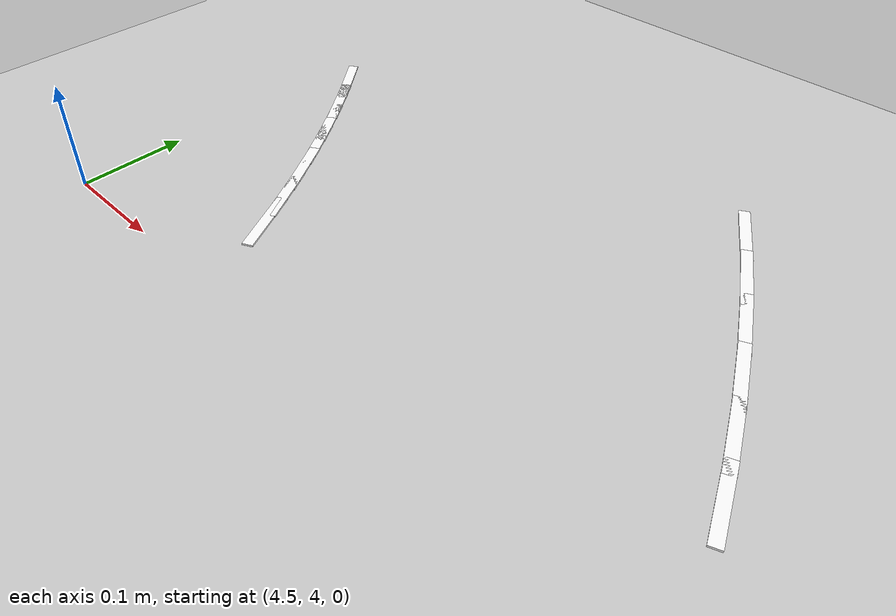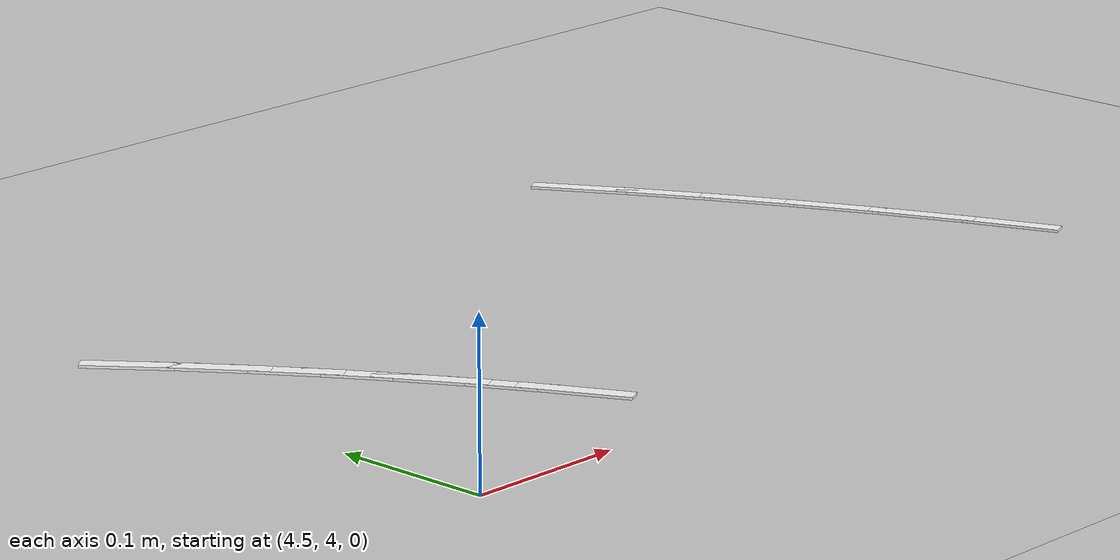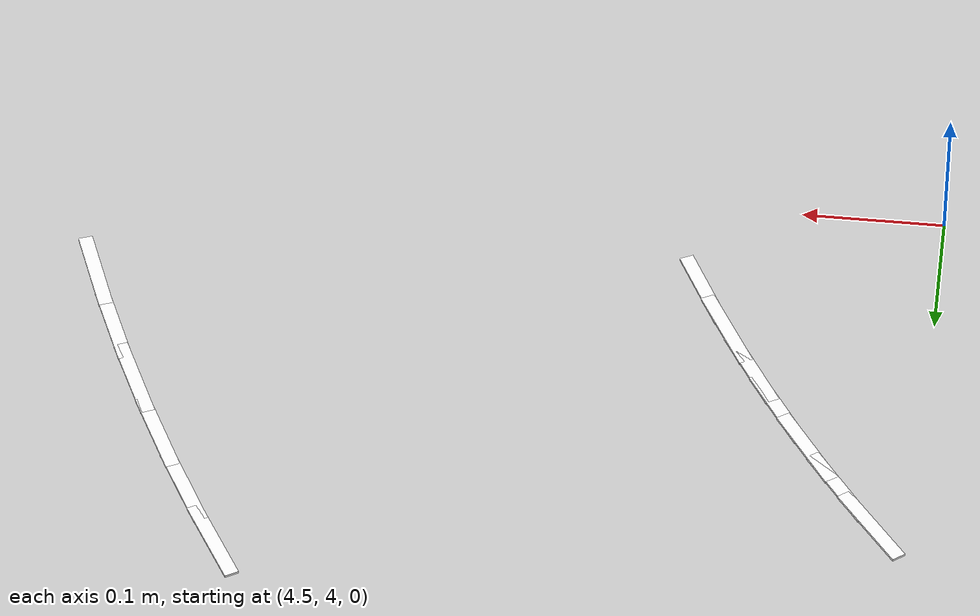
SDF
<sdf version="1.7">
 <world name="default">
  <model name="ground_plane">
   <static>1</static>
   <link name="link">
    <collision name="collision">
     <geometry><plane><normal>0 0 1</normal><size>100 100</size></plane></geometry>
     <surface>
      <contact><collide_bitmask>65535</collide_bitmask></contact>
      <friction><ode><mu>100</mu><mu2>50</mu2></ode></friction>
     </surface>
    </collision>
    <visual name="visual">
     <cast_shadows>0</cast_shadows>
     <geometry><plane><normal>0 0 1</normal><size>100 100</size></plane></geometry>
     <material>
      <script><uri>file://media/materials/scripts/gazebo.material</uri><name>Gazebo/Grey</name></script>
     </material>
    </visual>
   </link>
  </model>
  <model name="lane_line_right_161">
   <static>1</static>
   <link name="link">
    <pose>0 0 -0.004 0 -0 0</pose>
    <visual name="visual">
     <geometry><box><size>0.0681 0.01 0.01</size></box></geometry>
     <material><ambient>1 1 1 1</ambient><diffuse>1 1 1 1</diffuse></material>
    </visual>
    <collision name="collision"><geometry><box><size>0.0681 0.01 0.01</size></box></geometry></collision>
   </link>
   <pose>5.0856 4.11255 0 0 -0 1.93945</pose>
  </model>
  <model name="lane_line_right_162">
   <static>1</static>
   <link name="link">
    <pose>0 0 -0.004 0 -0 0</pose>
    <visual name="visual">
     <geometry><box><size>0.0681 0.01 0.01</size></box></geometry>
     <material><ambient>1 1 1 1</ambient><diffuse>1 1 1 1</diffuse></material>
    </visual>
    <collision name="collision"><geometry><box><size>0.0681 0.01 0.01</size></box></geometry></collision>
   </link>
   <pose>5.06515 4.16305 0 0 -0 1.97151</pose>
  </model>
  <model name="lane_line_right_163">
   <static>1</static>
   <link name="link">
    <pose>0 0 -0.004 0 -0 0</pose>
    <visual name="visual">
     <geometry><box><size>0.0681 0.01 0.01</size></box></geometry>
     <material><ambient>1 1 1 1</ambient><diffuse>1 1 1 1</diffuse></material>
    </visual>
    <collision name="collision"><geometry><box><size>0.0681 0.01 0.01</size></box></geometry></collision>
   </link>
   <pose>5.0431 4.21288 0 0 -0 2.00357</pose>
  </model>
  <model name="lane_line_left_164">
   <static>1</static>
   <link name="link">
    <pose>0 0 -0.004 0 -0 0</pose>
    <visual name="visual">
     <geometry><box><size>0.0681 0.01 0.01</size></box></geometry>
     <material><ambient>1 1 1 1</ambient><diffuse>1 1 1 1</diffuse></material>
    </visual>
    <collision name="collision"><geometry><box><size>0.0681 0.01 0.01</size></box></geometry></collision>
   </link>
   <pose>4.6619 4.08266 0 0 -0 2.03562</pose>
  </model>
  <model name="lane_line_right_164">
   <static>1</static>
   <link name="link">
    <pose>0 0 -0.004 0 -0 0</pose>
    <visual name="visual">
     <geometry><box><size>0.0681 0.01 0.01</size></box></geometry>
     <material><ambient>1 1 1 1</ambient><diffuse>1 1 1 1</diffuse></material>
    </visual>
    <collision name="collision"><geometry><box><size>0.0681 0.01 0.01</size></box></geometry></collision>
   </link>
   <pose>5.01946 4.26197 0 0 -0 2.03562</pose>
  </model>
  <model name="lane_line_left_165">
   <static>1</static>
   <link name="link">
    <pose>0 0 -0.004 0 -0 0</pose>
    <visual name="visual">
     <geometry><box><size>0.0681 0.01 0.01</size></box></geometry>
     <material><ambient>1 1 1 1</ambient><diffuse>1 1 1 1</diffuse></material>
    </visual>
    <collision name="collision"><geometry><box><size>0.0681 0.01 0.01</size></box></geometry></collision>
   </link>
   <pose>4.64262 4.1196 0 0 -0 2.06768</pose>
  </model>
  <model name="lane_line_right_165">
   <static>1</static>
   <link name="link">
    <pose>0 0 -0.004 0 -0 0</pose>
    <visual name="visual">
     <geometry><box><size>0.0681 0.01 0.01</size></box></geometry>
     <material><ambient>1 1 1 1</ambient><diffuse>1 1 1 1</diffuse></material>
    </visual>
    <collision name="collision"><geometry><box><size>0.0681 0.01 0.01</size></box></geometry></collision>
   </link>
   <pose>4.99425 4.31028 0 0 -0 2.06768</pose>
  </model>
  <model name="lane_line_left_166">
   <static>1</static>
   <link name="link">
    <pose>0 0 -0.004 0 -0 0</pose>
    <visual name="visual">
     <geometry><box><size>0.0681 0.01 0.01</size></box></geometry>
     <material><ambient>1 1 1 1</ambient><diffuse>1 1 1 1</diffuse></material>
    </visual>
    <collision name="collision"><geometry><box><size>0.0681 0.01 0.01</size></box></geometry></collision>
   </link>
   <pose>4.62218 4.15591 0 0 -0 2.09974</pose>
  </model>
  <model name="lane_line_right_166">
   <static>1</static>
   <link name="link">
    <pose>0 0 -0.004 0 -0 0</pose>
    <visual name="visual">
     <geometry><box><size>0.0681 0.01 0.01</size></box></geometry>
     <material><ambient>1 1 1 1</ambient><diffuse>1 1 1 1</diffuse></material>
    </visual>
    <collision name="collision"><geometry><box><size>0.0681 0.01 0.01</size></box></geometry></collision>
   </link>
   <pose>4.96751 4.35776 0 0 -0 2.09974</pose>
  </model>
  <model name="lane_line_left_167">
   <static>1</static>
   <link name="link">
    <pose>0 0 -0.004 0 -0 0</pose>
    <visual name="visual">
     <geometry><box><size>0.0681 0.01 0.01</size></box></geometry>
     <material><ambient>1 1 1 1</ambient><diffuse>1 1 1 1</diffuse></material>
    </visual>
    <collision name="collision"><geometry><box><size>0.0681 0.01 0.01</size></box></geometry></collision>
   </link>
   <pose>4.60058 4.19154 0 0 -0 2.1318</pose>
  </model>
  <model name="lane_line_left_168">
   <static>1</static>
   <link name="link">
    <pose>0 0 -0.004 0 -0 0</pose>
    <visual name="visual">
     <geometry><box><size>0.0681 0.01 0.01</size></box></geometry>
     <material><ambient>1 1 1 1</ambient><diffuse>1 1 1 1</diffuse></material>
    </visual>
    <collision name="collision"><geometry><box><size>0.0681 0.01 0.01</size></box></geometry></collision>
   </link>
   <pose>4.57785 4.22646 0 0 -0 2.16385</pose>
  </model>
  <model name="lane_line_left_169">
   <static>1</static>
   <link name="link">
    <pose>0 0 -0.004 0 -0 0</pose>
    <visual name="visual">
     <geometry><box><size>0.0681 0.01 0.01</size></box></geometry>
     <material><ambient>1 1 1 1</ambient><diffuse>1 1 1 1</diffuse></material>
    </visual>
    <collision name="collision"><geometry><box><size>0.0681 0.01 0.01</size></box></geometry></collision>
   </link>
   <pose>4.55401 4.26063 0 0 -0 2.19591</pose>
  </model>
  <model name="lane_line_left_170">
   <static>1</static>
   <link name="link">
    <pose>0 0 -0.004 0 -0 0</pose>
    <visual name="visual">
     <geometry><box><size>0.0681 0.01 0.01</size></box></geometry>
     <material><ambient>1 1 1 1</ambient><diffuse>1 1 1 1</diffuse></material>
    </visual>
    <collision name="collision"><geometry><box><size>0.0681 0.01 0.01</size></box></geometry></collision>
   </link>
   <pose>4.52909 4.29402 0 0 -0 2.22797</pose>
  </model>
 </world>
</sdf>
